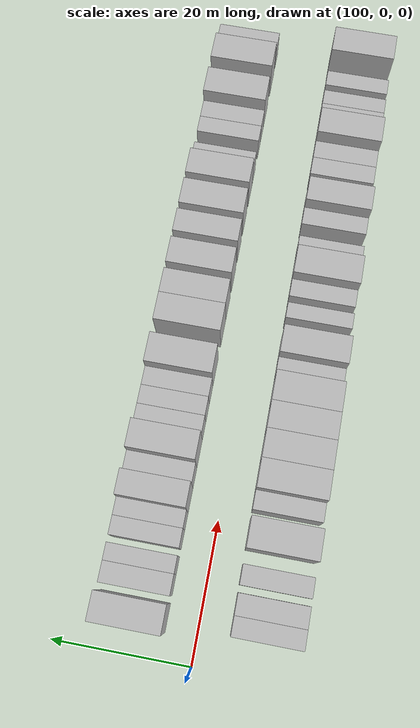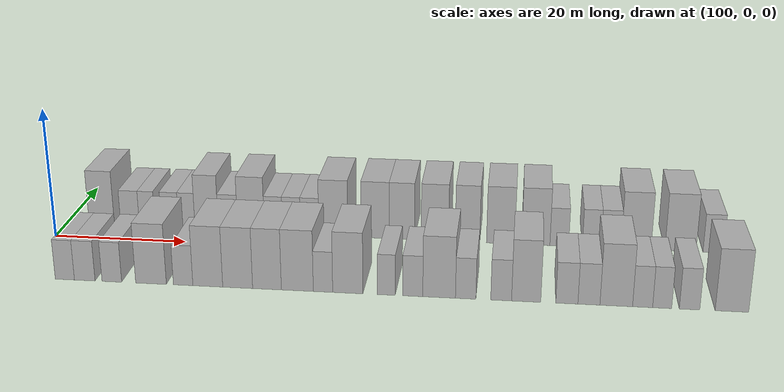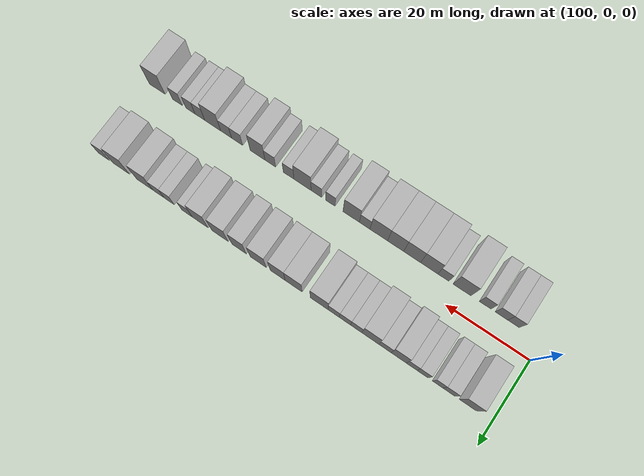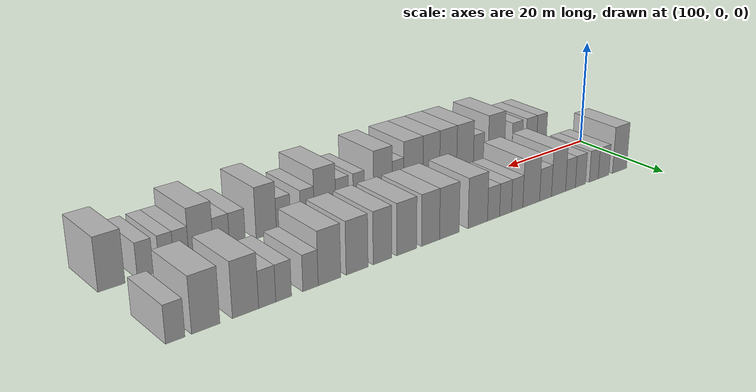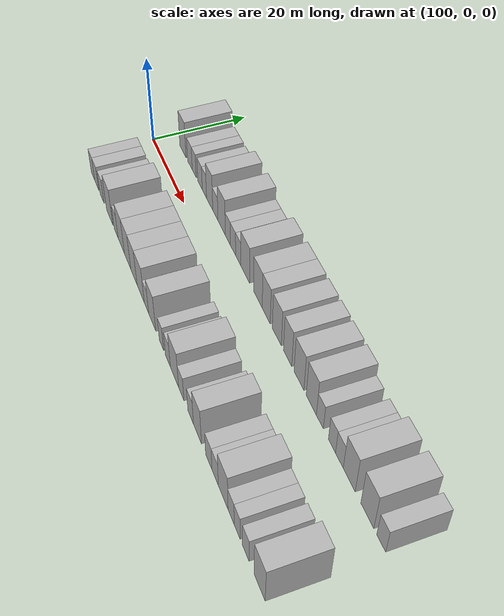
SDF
<sdf version="1.6">
 <world name="default">
  <model name="building_24">
   <static>1</static>
   <pose>105.7196 9.5000 0 0.000000 0.000000 1.570796</pose>
   <link name="link">
    <pose>0 0 4.50 0 0 0</pose>
    <collision name="collision"><geometry><box><size>10.0000 3.9787 9.0000</size></box></geometry></collision>
    <visual name="visual">
     <cast_shadows>0</cast_shadows>
     <geometry><box><size>10.0000 3.9787 9.0000</size></box></geometry>
     <material>
      <script>
       <uri>model://HANNAS_wall/materials/scripts</uri>
       <uri>model://HANNAS_wall/materials/textures</uri>
       <name>vrc/HANNAS_wall</name>
      </script>
     </material>
    </visual>
   </link>
  </model>
  <model name="building_25">
   <static>1</static>
   <pose>110.1704 9.5000 0 0.000000 0.000000 1.570796</pose>
   <link name="link">
    <pose>0 0 3.00 0 0 0</pose>
    <collision name="collision"><geometry><box><size>10.0000 2.9229 6.0000</size></box></geometry></collision>
    <visual name="visual">
     <cast_shadows>0</cast_shadows>
     <geometry><box><size>10.0000 2.9229 6.0000</size></box></geometry>
     <material>
      <script>
       <uri>model://HANNAS_wall/materials/scripts</uri>
       <uri>model://HANNAS_wall/materials/textures</uri>
       <name>vrc/HANNAS_wall</name>
      </script>
     </material>
    </visual>
   </link>
  </model>
  <model name="building_26">
   <static>1</static>
   <pose>112.8469 9.5000 0 0.000000 0.000000 1.570796</pose>
   <link name="link">
    <pose>0 0 3.00 0 0 0</pose>
    <collision name="collision"><geometry><box><size>10.0000 2.4302 6.0000</size></box></geometry></collision>
    <visual name="visual">
     <cast_shadows>0</cast_shadows>
     <geometry><box><size>10.0000 2.4302 6.0000</size></box></geometry>
     <material>
      <script>
       <uri>model://HANNAS_wall/materials/scripts</uri>
       <uri>model://HANNAS_wall/materials/textures</uri>
       <name>vrc/HANNAS_wall</name>
      </script>
     </material>
    </visual>
   </link>
  </model>
  <model name="building_27">
   <static>1</static>
   <pose>116.4080 9.5000 0 0.000000 0.000000 1.570796</pose>
   <link name="link">
    <pose>0 0 3.00 0 0 0</pose>
    <collision name="collision"><geometry><box><size>10.0000 2.6919 6.0000</size></box></geometry></collision>
    <visual name="visual">
     <cast_shadows>0</cast_shadows>
     <geometry><box><size>10.0000 2.6919 6.0000</size></box></geometry>
     <material>
      <script>
       <uri>model://HANNAS_wall/materials/scripts</uri>
       <uri>model://HANNAS_wall/materials/textures</uri>
       <name>vrc/HANNAS_wall</name>
      </script>
     </material>
    </visual>
   </link>
  </model>
  <model name="building_28">
   <static>1</static>
   <pose>119.0302 9.5000 0 0.000000 0.000000 1.570796</pose>
   <link name="link">
    <pose>0 0 3.00 0 0 0</pose>
    <collision name="collision"><geometry><box><size>10.0000 2.5525 6.0000</size></box></geometry></collision>
    <visual name="visual">
     <cast_shadows>0</cast_shadows>
     <geometry><box><size>10.0000 2.5525 6.0000</size></box></geometry>
     <material>
      <script>
       <uri>model://HANNAS_wall/materials/scripts</uri>
       <uri>model://HANNAS_wall/materials/textures</uri>
       <name>vrc/HANNAS_wall</name>
      </script>
     </material>
    </visual>
   </link>
  </model>
  <model name="building_29">
   <static>1</static>
   <pose>122.1112 9.5000 0 0.000000 0.000000 1.570796</pose>
   <link name="link">
    <pose>0 0 4.50 0 0 0</pose>
    <collision name="collision"><geometry><box><size>10.0000 3.6096 9.0000</size></box></geometry></collision>
    <visual name="visual">
     <cast_shadows>0</cast_shadows>
     <geometry><box><size>10.0000 3.6096 9.0000</size></box></geometry>
     <material>
      <script>
       <uri>model://HANNAS_wall/materials/scripts</uri>
       <uri>model://HANNAS_wall/materials/textures</uri>
       <name>vrc/HANNAS_wall</name>
      </script>
     </material>
    </visual>
   </link>
  </model>
  <model name="building_30">
   <static>1</static>
   <pose>125.4067 9.5000 0 0.000000 0.000000 1.570796</pose>
   <link name="link">
    <pose>0 0 3.00 0 0 0</pose>
    <collision name="collision"><geometry><box><size>10.0000 2.9814 6.0000</size></box></geometry></collision>
    <visual name="visual">
     <cast_shadows>0</cast_shadows>
     <geometry><box><size>10.0000 2.9814 6.0000</size></box></geometry>
     <material>
      <script>
       <uri>model://HANNAS_wall/materials/scripts</uri>
       <uri>model://HANNAS_wall/materials/textures</uri>
       <name>vrc/HANNAS_wall</name>
      </script>
     </material>
    </visual>
   </link>
  </model>
  <model name="building_31">
   <static>1</static>
   <pose>128.9537 9.5000 0 0.000000 0.000000 1.570796</pose>
   <link name="link">
    <pose>0 0 4.50 0 0 0</pose>
    <collision name="collision"><geometry><box><size>10.0000 4.1126 9.0000</size></box></geometry></collision>
    <visual name="visual">
     <cast_shadows>0</cast_shadows>
     <geometry><box><size>10.0000 4.1126 9.0000</size></box></geometry>
     <material>
      <script>
       <uri>model://HANNAS_wall/materials/scripts</uri>
       <uri>model://HANNAS_wall/materials/textures</uri>
       <name>vrc/HANNAS_wall</name>
      </script>
     </material>
    </visual>
   </link>
  </model>
  <model name="building_32">
   <static>1</static>
   <pose>132.3761 9.5000 0 0.000000 0.000000 1.570796</pose>
   <link name="link">
    <pose>0 0 3.00 0 0 0</pose>
    <collision name="collision"><geometry><box><size>10.0000 2.7322 6.0000</size></box></geometry></collision>
    <visual name="visual">
     <cast_shadows>0</cast_shadows>
     <geometry><box><size>10.0000 2.7322 6.0000</size></box></geometry>
     <material>
      <script>
       <uri>model://HANNAS_wall/materials/scripts</uri>
       <uri>model://HANNAS_wall/materials/textures</uri>
       <name>vrc/HANNAS_wall</name>
      </script>
     </material>
    </visual>
   </link>
  </model>
  <model name="building_33">
   <static>1</static>
   <pose>135.1400 9.5000 0 0.000000 0.000000 1.570796</pose>
   <link name="link">
    <pose>0 0 3.00 0 0 0</pose>
    <collision name="collision"><geometry><box><size>10.0000 2.7955 6.0000</size></box></geometry></collision>
    <visual name="visual">
     <cast_shadows>0</cast_shadows>
     <geometry><box><size>10.0000 2.7955 6.0000</size></box></geometry>
     <material>
      <script>
       <uri>model://HANNAS_wall/materials/scripts</uri>
       <uri>model://HANNAS_wall/materials/textures</uri>
       <name>vrc/HANNAS_wall</name>
      </script>
     </material>
    </visual>
   </link>
  </model>
  <model name="building_34">
   <static>1</static>
   <pose>137.9441 9.5000 0 0.000000 0.000000 1.570796</pose>
   <link name="link">
    <pose>0 0 3.00 0 0 0</pose>
    <collision name="collision"><geometry><box><size>10.0000 2.8127 6.0000</size></box></geometry></collision>
    <visual name="visual">
     <cast_shadows>0</cast_shadows>
     <geometry><box><size>10.0000 2.8127 6.0000</size></box></geometry>
     <material>
      <script>
       <uri>model://HANNAS_wall/materials/scripts</uri>
       <uri>model://HANNAS_wall/materials/textures</uri>
       <name>vrc/HANNAS_wall</name>
      </script>
     </material>
    </visual>
   </link>
  </model>
  <model name="building_35">
   <static>1</static>
   <pose>141.5516 9.5000 0 0.000000 0.000000 1.570796</pose>
   <link name="link">
    <pose>0 0 4.50 0 0 0</pose>
    <collision name="collision"><geometry><box><size>10.0000 4.4023 9.0000</size></box></geometry></collision>
    <visual name="visual">
     <cast_shadows>0</cast_shadows>
     <geometry><box><size>10.0000 4.4023 9.0000</size></box></geometry>
     <material>
      <script>
       <uri>model://HANNAS_wall/materials/scripts</uri>
       <uri>model://HANNAS_wall/materials/textures</uri>
       <name>vrc/HANNAS_wall</name>
      </script>
     </material>
    </visual>
   </link>
  </model>
  <model name="building_36">
   <static>1</static>
   <pose>147.8700 9.5000 0 0.000000 0.000000 1.570796</pose>
   <link name="link">
    <pose>0 0 4.50 0 0 0</pose>
    <collision name="collision"><geometry><box><size>10.0000 4.2344 9.0000</size></box></geometry></collision>
    <visual name="visual">
     <cast_shadows>0</cast_shadows>
     <geometry><box><size>10.0000 4.2344 9.0000</size></box></geometry>
     <material>
      <script>
       <uri>model://HANNAS_wall/materials/scripts</uri>
       <uri>model://HANNAS_wall/materials/textures</uri>
       <name>vrc/HANNAS_wall</name>
      </script>
     </material>
    </visual>
   </link>
  </model>
  <model name="building_37">
   <static>1</static>
   <pose>151.8940 9.5000 0 0.000000 0.000000 1.570796</pose>
   <link name="link">
    <pose>0 0 4.50 0 0 0</pose>
    <collision name="collision"><geometry><box><size>10.0000 3.8136 9.0000</size></box></geometry></collision>
    <visual name="visual">
     <cast_shadows>0</cast_shadows>
     <geometry><box><size>10.0000 3.8136 9.0000</size></box></geometry>
     <material>
      <script>
       <uri>model://HANNAS_wall/materials/scripts</uri>
       <uri>model://HANNAS_wall/materials/textures</uri>
       <name>vrc/HANNAS_wall</name>
      </script>
     </material>
    </visual>
   </link>
  </model>
  <model name="building_38">
   <static>1</static>
   <pose>156.8521 9.5000 0 0.000000 0.000000 1.570796</pose>
   <link name="link">
    <pose>0 0 4.50 0 0 0</pose>
    <collision name="collision"><geometry><box><size>10.0000 4.1026 9.0000</size></box></geometry></collision>
    <visual name="visual">
     <cast_shadows>0</cast_shadows>
     <geometry><box><size>10.0000 4.1026 9.0000</size></box></geometry>
     <material>
      <script>
       <uri>model://HANNAS_wall/materials/scripts</uri>
       <uri>model://HANNAS_wall/materials/textures</uri>
       <name>vrc/HANNAS_wall</name>
      </script>
     </material>
    </visual>
   </link>
  </model>
  <model name="building_39">
   <static>1</static>
   <pose>161.7324 9.5000 0 0.000000 0.000000 1.570796</pose>
   <link name="link">
    <pose>0 0 4.50 0 0 0</pose>
    <collision name="collision"><geometry><box><size>10.0000 3.6582 9.0000</size></box></geometry></collision>
    <visual name="visual">
     <cast_shadows>0</cast_shadows>
     <geometry><box><size>10.0000 3.6582 9.0000</size></box></geometry>
     <material>
      <script>
       <uri>model://HANNAS_wall/materials/scripts</uri>
       <uri>model://HANNAS_wall/materials/textures</uri>
       <name>vrc/HANNAS_wall</name>
      </script>
     </material>
    </visual>
   </link>
  </model>
  <model name="building_40">
   <static>1</static>
   <pose>166.6610 9.5000 0 0.000000 0.000000 1.570796</pose>
   <link name="link">
    <pose>0 0 4.50 0 0 0</pose>
    <collision name="collision"><geometry><box><size>10.0000 4.1989 9.0000</size></box></geometry></collision>
    <visual name="visual">
     <cast_shadows>0</cast_shadows>
     <geometry><box><size>10.0000 4.1989 9.0000</size></box></geometry>
     <material>
      <script>
       <uri>model://HANNAS_wall/materials/scripts</uri>
       <uri>model://HANNAS_wall/materials/textures</uri>
       <name>vrc/HANNAS_wall</name>
      </script>
     </material>
    </visual>
   </link>
  </model>
  <model name="building_41">
   <static>1</static>
   <pose>171.8428 9.5000 0 0.000000 0.000000 1.570796</pose>
   <link name="link">
    <pose>0 0 4.50 0 0 0</pose>
    <collision name="collision"><geometry><box><size>10.0000 4.1647 9.0000</size></box></geometry></collision>
    <visual name="visual">
     <cast_shadows>0</cast_shadows>
     <geometry><box><size>10.0000 4.1647 9.0000</size></box></geometry>
     <material>
      <script>
       <uri>model://HANNAS_wall/materials/scripts</uri>
       <uri>model://HANNAS_wall/materials/textures</uri>
       <name>vrc/HANNAS_wall</name>
      </script>
     </material>
    </visual>
   </link>
  </model>
  <model name="building_42">
   <static>1</static>
   <pose>175.3024 9.5000 0 0.000000 0.000000 1.570796</pose>
   <link name="link">
    <pose>0 0 3.00 0 0 0</pose>
    <collision name="collision"><geometry><box><size>10.0000 2.7545 6.0000</size></box></geometry></collision>
    <visual name="visual">
     <cast_shadows>0</cast_shadows>
     <geometry><box><size>10.0000 2.7545 6.0000</size></box></geometry>
     <material>
      <script>
       <uri>model://HANNAS_wall/materials/scripts</uri>
       <uri>model://HANNAS_wall/materials/textures</uri>
       <name>vrc/HANNAS_wall</name>
      </script>
     </material>
    </visual>
   </link>
  </model>
  <model name="building_43">
   <static>1</static>
   <pose>180.0459 9.5000 0 0.000000 0.000000 1.570796</pose>
   <link name="link">
    <pose>0 0 3.00 0 0 0</pose>
    <collision name="collision"><geometry><box><size>10.0000 2.7326 6.0000</size></box></geometry></collision>
    <visual name="visual">
     <cast_shadows>0</cast_shadows>
     <geometry><box><size>10.0000 2.7326 6.0000</size></box></geometry>
     <material>
      <script>
       <uri>model://HANNAS_wall/materials/scripts</uri>
       <uri>model://HANNAS_wall/materials/textures</uri>
       <name>vrc/HANNAS_wall</name>
      </script>
     </material>
    </visual>
   </link>
  </model>
  <model name="building_44">
   <static>1</static>
   <pose>182.8672 9.5000 0 0.000000 0.000000 1.570796</pose>
   <link name="link">
    <pose>0 0 3.00 0 0 0</pose>
    <collision name="collision"><geometry><box><size>10.0000 2.9100 6.0000</size></box></geometry></collision>
    <visual name="visual">
     <cast_shadows>0</cast_shadows>
     <geometry><box><size>10.0000 2.9100 6.0000</size></box></geometry>
     <material>
      <script>
       <uri>model://HANNAS_wall/materials/scripts</uri>
       <uri>model://HANNAS_wall/materials/textures</uri>
       <name>vrc/HANNAS_wall</name>
      </script>
     </material>
    </visual>
   </link>
  </model>
  <model name="building_45">
   <static>1</static>
   <pose>186.5010 9.5000 0 0.000000 0.000000 1.570796</pose>
   <link name="link">
    <pose>0 0 4.50 0 0 0</pose>
    <collision name="collision"><geometry><box><size>10.0000 4.3575 9.0000</size></box></geometry></collision>
    <visual name="visual">
     <cast_shadows>0</cast_shadows>
     <geometry><box><size>10.0000 4.3575 9.0000</size></box></geometry>
     <material>
      <script>
       <uri>model://HANNAS_wall/materials/scripts</uri>
       <uri>model://HANNAS_wall/materials/textures</uri>
       <name>vrc/HANNAS_wall</name>
      </script>
     </material>
    </visual>
   </link>
  </model>
  <model name="building_46">
   <static>1</static>
   <pose>192.9257 9.5000 0 0.000000 0.000000 1.570796</pose>
   <link name="link">
    <pose>0 0 4.50 0 0 0</pose>
    <collision name="collision"><geometry><box><size>10.0000 4.4920 9.0000</size></box></geometry></collision>
    <visual name="visual">
     <cast_shadows>0</cast_shadows>
     <geometry><box><size>10.0000 4.4920 9.0000</size></box></geometry>
     <material>
      <script>
       <uri>model://HANNAS_wall/materials/scripts</uri>
       <uri>model://HANNAS_wall/materials/textures</uri>
       <name>vrc/HANNAS_wall</name>
      </script>
     </material>
    </visual>
   </link>
  </model>
  <model name="building_47">
   <static>1</static>
   <pose>197.6539 9.5000 0 0.000000 0.000000 1.570796</pose>
   <link name="link">
    <pose>0 0 3.00 0 0 0</pose>
    <collision name="collision"><geometry><box><size>10.0000 2.9644 6.0000</size></box></geometry></collision>
    <visual name="visual">
     <cast_shadows>0</cast_shadows>
     <geometry><box><size>10.0000 2.9644 6.0000</size></box></geometry>
     <material>
      <script>
       <uri>model://HANNAS_wall/materials/scripts</uri>
       <uri>model://HANNAS_wall/materials/textures</uri>
       <name>vrc/HANNAS_wall</name>
      </script>
     </material>
    </visual>
   </link>
  </model>
  <model name="building_73">
   <static>1</static>
   <pose>106.5336 -9.5000 0 0.000000 0.000000 1.570796</pose>
   <link name="link">
    <pose>0 0 3.00 0 0 0</pose>
    <collision name="collision"><geometry><box><size>10.0000 2.7505 6.0000</size></box></geometry></collision>
    <visual name="visual">
     <cast_shadows>0</cast_shadows>
     <geometry><box><size>10.0000 2.7505 6.0000</size></box></geometry>
     <material>
      <script>
       <uri>model://HANNAS_wall/materials/scripts</uri>
       <uri>model://HANNAS_wall/materials/textures</uri>
       <name>vrc/HANNAS_wall</name>
      </script>
     </material>
    </visual>
   </link>
  </model>
  <model name="building_74">
   <static>1</static>
   <pose>109.3898 -9.5000 0 0.000000 0.000000 1.570796</pose>
   <link name="link">
    <pose>0 0 3.00 0 0 0</pose>
    <collision name="collision"><geometry><box><size>10.0000 2.9618 6.0000</size></box></geometry></collision>
    <visual name="visual">
     <cast_shadows>0</cast_shadows>
     <geometry><box><size>10.0000 2.9618 6.0000</size></box></geometry>
     <material>
      <script>
       <uri>model://HANNAS_wall/materials/scripts</uri>
       <uri>model://HANNAS_wall/materials/textures</uri>
       <name>vrc/HANNAS_wall</name>
      </script>
     </material>
    </visual>
   </link>
  </model>
  <model name="building_75">
   <static>1</static>
   <pose>113.2733 -9.5000 0 0.000000 0.000000 1.570796</pose>
   <link name="link">
    <pose>0 0 3.00 0 0 0</pose>
    <collision name="collision"><geometry><box><size>10.0000 2.8052 6.0000</size></box></geometry></collision>
    <visual name="visual">
     <cast_shadows>0</cast_shadows>
     <geometry><box><size>10.0000 2.8052 6.0000</size></box></geometry>
     <material>
      <script>
       <uri>model://HANNAS_wall/materials/scripts</uri>
       <uri>model://HANNAS_wall/materials/textures</uri>
       <name>vrc/HANNAS_wall</name>
      </script>
     </material>
    </visual>
   </link>
  </model>
  <model name="building_76">
   <static>1</static>
   <pose>118.8533 -9.5000 0 0.000000 0.000000 1.570796</pose>
   <link name="link">
    <pose>0 0 4.50 0 0 0</pose>
    <collision name="collision"><geometry><box><size>10.0000 4.3549 9.0000</size></box></geometry></collision>
    <visual name="visual">
     <cast_shadows>0</cast_shadows>
     <geometry><box><size>10.0000 4.3549 9.0000</size></box></geometry>
     <material>
      <script>
       <uri>model://HANNAS_wall/materials/scripts</uri>
       <uri>model://HANNAS_wall/materials/textures</uri>
       <name>vrc/HANNAS_wall</name>
      </script>
     </material>
    </visual>
   </link>
  </model>
  <model name="building_77">
   <static>1</static>
   <pose>123.4041 -9.5000 0 0.000000 0.000000 1.570796</pose>
   <link name="link">
    <pose>0 0 3.00 0 0 0</pose>
    <collision name="collision"><geometry><box><size>10.0000 2.7466 6.0000</size></box></geometry></collision>
    <visual name="visual">
     <cast_shadows>0</cast_shadows>
     <geometry><box><size>10.0000 2.7466 6.0000</size></box></geometry>
     <material>
      <script>
       <uri>model://HANNAS_wall/materials/scripts</uri>
       <uri>model://HANNAS_wall/materials/textures</uri>
       <name>vrc/HANNAS_wall</name>
      </script>
     </material>
    </visual>
   </link>
  </model>
  <model name="building_78">
   <static>1</static>
   <pose>126.8798 -9.5000 0 0.000000 0.000000 1.570796</pose>
   <link name="link">
    <pose>0 0 4.50 0 0 0</pose>
    <collision name="collision"><geometry><box><size>10.0000 4.2047 9.0000</size></box></geometry></collision>
    <visual name="visual">
     <cast_shadows>0</cast_shadows>
     <geometry><box><size>10.0000 4.2047 9.0000</size></box></geometry>
     <material>
      <script>
       <uri>model://HANNAS_wall/materials/scripts</uri>
       <uri>model://HANNAS_wall/materials/textures</uri>
       <name>vrc/HANNAS_wall</name>
      </script>
     </material>
    </visual>
   </link>
  </model>
  <model name="building_79">
   <static>1</static>
   <pose>131.0753 -9.5000 0 0.000000 0.000000 1.570796</pose>
   <link name="link">
    <pose>0 0 4.50 0 0 0</pose>
    <collision name="collision"><geometry><box><size>10.0000 4.1864 9.0000</size></box></geometry></collision>
    <visual name="visual">
     <cast_shadows>0</cast_shadows>
     <geometry><box><size>10.0000 4.1864 9.0000</size></box></geometry>
     <material>
      <script>
       <uri>model://HANNAS_wall/materials/scripts</uri>
       <uri>model://HANNAS_wall/materials/textures</uri>
       <name>vrc/HANNAS_wall</name>
      </script>
     </material>
    </visual>
   </link>
  </model>
  <model name="building_80">
   <static>1</static>
   <pose>135.1726 -9.5000 0 0.000000 0.000000 1.570796</pose>
   <link name="link">
    <pose>0 0 4.50 0 0 0</pose>
    <collision name="collision"><geometry><box><size>10.0000 4.0082 9.0000</size></box></geometry></collision>
    <visual name="visual">
     <cast_shadows>0</cast_shadows>
     <geometry><box><size>10.0000 4.0082 9.0000</size></box></geometry>
     <material>
      <script>
       <uri>model://HANNAS_wall/materials/scripts</uri>
       <uri>model://HANNAS_wall/materials/textures</uri>
       <name>vrc/HANNAS_wall</name>
      </script>
     </material>
    </visual>
   </link>
  </model>
  <model name="building_81">
   <static>1</static>
   <pose>139.3940 -9.5000 0 0.000000 0.000000 1.570796</pose>
   <link name="link">
    <pose>0 0 4.50 0 0 0</pose>
    <collision name="collision"><geometry><box><size>10.0000 4.4346 9.0000</size></box></geometry></collision>
    <visual name="visual">
     <cast_shadows>0</cast_shadows>
     <geometry><box><size>10.0000 4.4346 9.0000</size></box></geometry>
     <material>
      <script>
       <uri>model://HANNAS_wall/materials/scripts</uri>
       <uri>model://HANNAS_wall/materials/textures</uri>
       <name>vrc/HANNAS_wall</name>
      </script>
     </material>
    </visual>
   </link>
  </model>
  <model name="building_82">
   <static>1</static>
   <pose>142.9477 -9.5000 0 0.000000 0.000000 1.570796</pose>
   <link name="link">
    <pose>0 0 3.00 0 0 0</pose>
    <collision name="collision"><geometry><box><size>10.0000 2.6729 6.0000</size></box></geometry></collision>
    <visual name="visual">
     <cast_shadows>0</cast_shadows>
     <geometry><box><size>10.0000 2.6729 6.0000</size></box></geometry>
     <material>
      <script>
       <uri>model://HANNAS_wall/materials/scripts</uri>
       <uri>model://HANNAS_wall/materials/textures</uri>
       <name>vrc/HANNAS_wall</name>
      </script>
     </material>
    </visual>
   </link>
  </model>
  <model name="building_83">
   <static>1</static>
   <pose>146.3636 -9.5000 0 0.000000 0.000000 1.570796</pose>
   <link name="link">
    <pose>0 0 4.50 0 0 0</pose>
    <collision name="collision"><geometry><box><size>10.0000 4.1588 9.0000</size></box></geometry></collision>
    <visual name="visual">
     <cast_shadows>0</cast_shadows>
     <geometry><box><size>10.0000 4.1588 9.0000</size></box></geometry>
     <material>
      <script>
       <uri>model://HANNAS_wall/materials/scripts</uri>
       <uri>model://HANNAS_wall/materials/textures</uri>
       <name>vrc/HANNAS_wall</name>
      </script>
     </material>
    </visual>
   </link>
  </model>
  <model name="building_84">
   <static>1</static>
   <pose>151.6605 -9.5000 0 0.000000 0.000000 1.570796</pose>
   <link name="link">
    <pose>0 0 3.00 0 0 0</pose>
    <collision name="collision"><geometry><box><size>10.0000 2.4350 6.0000</size></box></geometry></collision>
    <visual name="visual">
     <cast_shadows>0</cast_shadows>
     <geometry><box><size>10.0000 2.4350 6.0000</size></box></geometry>
     <material>
      <script>
       <uri>model://HANNAS_wall/materials/scripts</uri>
       <uri>model://HANNAS_wall/materials/textures</uri>
       <name>vrc/HANNAS_wall</name>
      </script>
     </material>
    </visual>
   </link>
  </model>
  <model name="building_85">
   <static>1</static>
   <pose>155.2530 -9.5000 0 0.000000 0.000000 1.570796</pose>
   <link name="link">
    <pose>0 0 3.00 0 0 0</pose>
    <collision name="collision"><geometry><box><size>10.0000 2.7498 6.0000</size></box></geometry></collision>
    <visual name="visual">
     <cast_shadows>0</cast_shadows>
     <geometry><box><size>10.0000 2.7498 6.0000</size></box></geometry>
     <material>
      <script>
       <uri>model://HANNAS_wall/materials/scripts</uri>
       <uri>model://HANNAS_wall/materials/textures</uri>
       <name>vrc/HANNAS_wall</name>
      </script>
     </material>
    </visual>
   </link>
  </model>
  <model name="building_86">
   <static>1</static>
   <pose>158.8452 -9.5000 0 0.000000 0.000000 1.570796</pose>
   <link name="link">
    <pose>0 0 4.50 0 0 0</pose>
    <collision name="collision"><geometry><box><size>10.0000 4.4347 9.0000</size></box></geometry></collision>
    <visual name="visual">
     <cast_shadows>0</cast_shadows>
     <geometry><box><size>10.0000 4.4347 9.0000</size></box></geometry>
     <material>
      <script>
       <uri>model://HANNAS_wall/materials/scripts</uri>
       <uri>model://HANNAS_wall/materials/textures</uri>
       <name>vrc/HANNAS_wall</name>
      </script>
     </material>
    </visual>
   </link>
  </model>
  <model name="building_87">
   <static>1</static>
   <pose>162.4438 -9.5000 0 0.000000 0.000000 1.570796</pose>
   <link name="link">
    <pose>0 0 3.00 0 0 0</pose>
    <collision name="collision"><geometry><box><size>10.0000 2.7626 6.0000</size></box></geometry></collision>
    <visual name="visual">
     <cast_shadows>0</cast_shadows>
     <geometry><box><size>10.0000 2.7626 6.0000</size></box></geometry>
     <material>
      <script>
       <uri>model://HANNAS_wall/materials/scripts</uri>
       <uri>model://HANNAS_wall/materials/textures</uri>
       <name>vrc/HANNAS_wall</name>
      </script>
     </material>
    </visual>
   </link>
  </model>
  <model name="building_88">
   <static>1</static>
   <pose>167.2245 -9.5000 0 0.000000 0.000000 1.570796</pose>
   <link name="link">
    <pose>0 0 3.00 0 0 0</pose>
    <collision name="collision"><geometry><box><size>10.0000 2.7988 6.0000</size></box></geometry></collision>
    <visual name="visual">
     <cast_shadows>0</cast_shadows>
     <geometry><box><size>10.0000 2.7988 6.0000</size></box></geometry>
     <material>
      <script>
       <uri>model://HANNAS_wall/materials/scripts</uri>
       <uri>model://HANNAS_wall/materials/textures</uri>
       <name>vrc/HANNAS_wall</name>
      </script>
     </material>
    </visual>
   </link>
  </model>
  <model name="building_89">
   <static>1</static>
   <pose>170.5803 -9.5000 0 0.000000 0.000000 1.570796</pose>
   <link name="link">
    <pose>0 0 4.50 0 0 0</pose>
    <collision name="collision"><geometry><box><size>10.0000 3.9128 9.0000</size></box></geometry></collision>
    <visual name="visual">
     <cast_shadows>0</cast_shadows>
     <geometry><box><size>10.0000 3.9128 9.0000</size></box></geometry>
     <material>
      <script>
       <uri>model://HANNAS_wall/materials/scripts</uri>
       <uri>model://HANNAS_wall/materials/textures</uri>
       <name>vrc/HANNAS_wall</name>
      </script>
     </material>
    </visual>
   </link>
  </model>
  <model name="building_90">
   <static>1</static>
   <pose>176.0082 -9.5000 0 0.000000 0.000000 1.570796</pose>
   <link name="link">
    <pose>0 0 3.00 0 0 0</pose>
    <collision name="collision"><geometry><box><size>10.0000 2.9428 6.0000</size></box></geometry></collision>
    <visual name="visual">
     <cast_shadows>0</cast_shadows>
     <geometry><box><size>10.0000 2.9428 6.0000</size></box></geometry>
     <material>
      <script>
       <uri>model://HANNAS_wall/materials/scripts</uri>
       <uri>model://HANNAS_wall/materials/textures</uri>
       <name>vrc/HANNAS_wall</name>
      </script>
     </material>
    </visual>
   </link>
  </model>
  <model name="building_91">
   <static>1</static>
   <pose>178.9408 -9.5000 0 0.000000 0.000000 1.570796</pose>
   <link name="link">
    <pose>0 0 3.00 0 0 0</pose>
    <collision name="collision"><geometry><box><size>10.0000 2.9224 6.0000</size></box></geometry></collision>
    <visual name="visual">
     <cast_shadows>0</cast_shadows>
     <geometry><box><size>10.0000 2.9224 6.0000</size></box></geometry>
     <material>
      <script>
       <uri>model://HANNAS_wall/materials/scripts</uri>
       <uri>model://HANNAS_wall/materials/textures</uri>
       <name>vrc/HANNAS_wall</name>
      </script>
     </material>
    </visual>
   </link>
  </model>
  <model name="building_92">
   <static>1</static>
   <pose>182.5567 -9.5000 0 0.000000 0.000000 1.570796</pose>
   <link name="link">
    <pose>0 0 4.50 0 0 0</pose>
    <collision name="collision"><geometry><box><size>10.0000 4.3094 9.0000</size></box></geometry></collision>
    <visual name="visual">
     <cast_shadows>0</cast_shadows>
     <geometry><box><size>10.0000 4.3094 9.0000</size></box></geometry>
     <material>
      <script>
       <uri>model://HANNAS_wall/materials/scripts</uri>
       <uri>model://HANNAS_wall/materials/textures</uri>
       <name>vrc/HANNAS_wall</name>
      </script>
     </material>
    </visual>
   </link>
  </model>
  <model name="building_93">
   <static>1</static>
   <pose>186.0290 -9.5000 0 0.000000 0.000000 1.570796</pose>
   <link name="link">
    <pose>0 0 3.00 0 0 0</pose>
    <collision name="collision"><geometry><box><size>10.0000 2.6354 6.0000</size></box></geometry></collision>
    <visual name="visual">
     <cast_shadows>0</cast_shadows>
     <geometry><box><size>10.0000 2.6354 6.0000</size></box></geometry>
     <material>
      <script>
       <uri>model://HANNAS_wall/materials/scripts</uri>
       <uri>model://HANNAS_wall/materials/textures</uri>
       <name>vrc/HANNAS_wall</name>
      </script>
     </material>
    </visual>
   </link>
  </model>
  <model name="building_94">
   <static>1</static>
   <pose>188.5968 -9.5000 0 0.000000 0.000000 1.570796</pose>
   <link name="link">
    <pose>0 0 3.00 0 0 0</pose>
    <collision name="collision"><geometry><box><size>10.0000 2.5001 6.0000</size></box></geometry></collision>
    <visual name="visual">
     <cast_shadows>0</cast_shadows>
     <geometry><box><size>10.0000 2.5001 6.0000</size></box></geometry>
     <material>
      <script>
       <uri>model://HANNAS_wall/materials/scripts</uri>
       <uri>model://HANNAS_wall/materials/textures</uri>
       <name>vrc/HANNAS_wall</name>
      </script>
     </material>
    </visual>
   </link>
  </model>
  <model name="building_95">
   <static>1</static>
   <pose>192.1845 -9.5000 0 0.000000 0.000000 1.570796</pose>
   <link name="link">
    <pose>0 0 3.00 0 0 0</pose>
    <collision name="collision"><geometry><box><size>10.0000 2.6753 6.0000</size></box></geometry></collision>
    <visual name="visual">
     <cast_shadows>0</cast_shadows>
     <geometry><box><size>10.0000 2.6753 6.0000</size></box></geometry>
     <material>
      <script>
       <uri>model://HANNAS_wall/materials/scripts</uri>
       <uri>model://HANNAS_wall/materials/textures</uri>
       <name>vrc/HANNAS_wall</name>
      </script>
     </material>
    </visual>
   </link>
  </model>
  <model name="building_96">
   <static>1</static>
   <pose>197.6973 -9.5000 0 0.000000 0.000000 1.570796</pose>
   <link name="link">
    <pose>0 0 4.50 0 0 0</pose>
    <collision name="collision"><geometry><box><size>10.0000 4.3504 9.0000</size></box></geometry></collision>
    <visual name="visual">
     <cast_shadows>0</cast_shadows>
     <geometry><box><size>10.0000 4.3504 9.0000</size></box></geometry>
     <material>
      <script>
       <uri>model://HANNAS_wall/materials/scripts</uri>
       <uri>model://HANNAS_wall/materials/textures</uri>
       <name>vrc/HANNAS_wall</name>
      </script>
     </material>
    </visual>
   </link>
  </model>
 </world>
</sdf>
